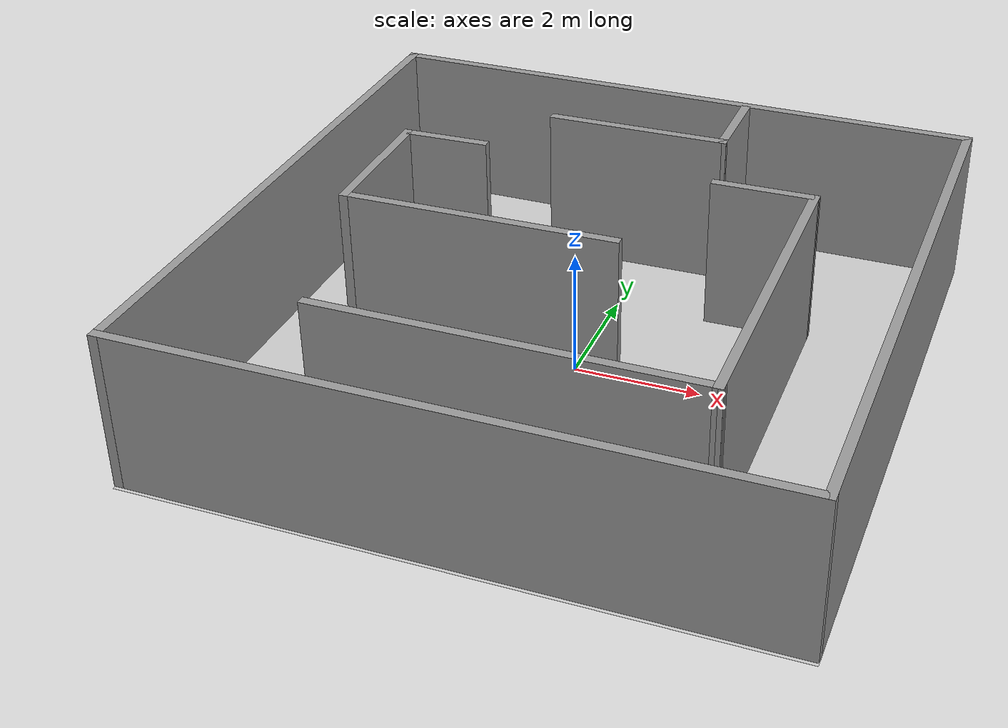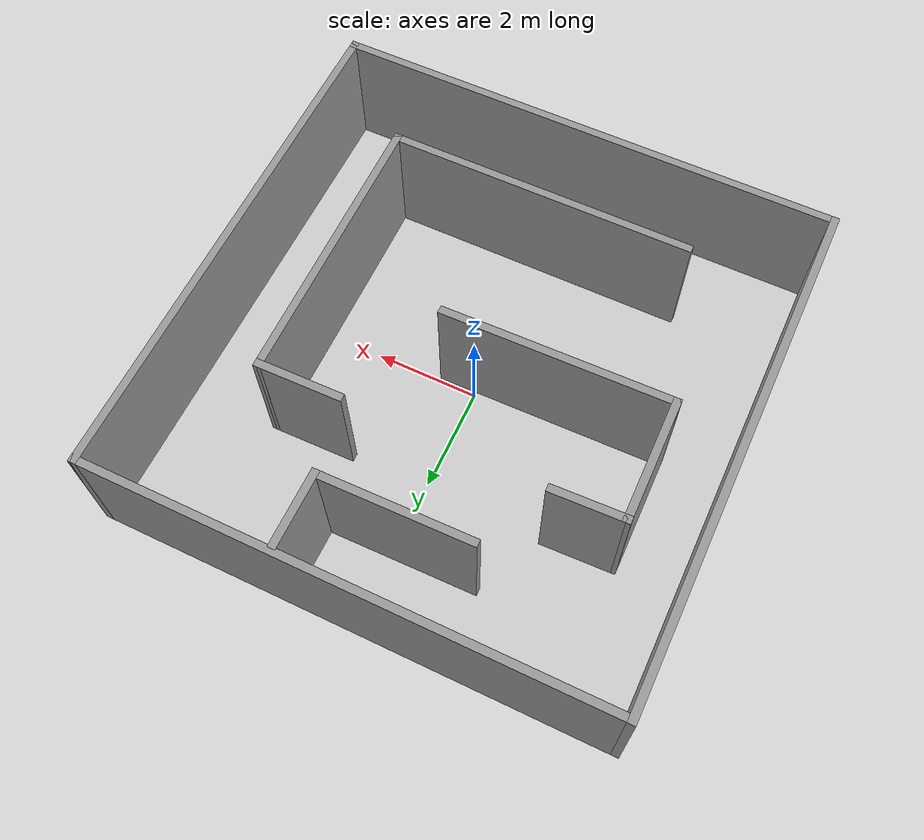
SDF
<sdf version="1.7">
 <world name="default">
  <light name="sun" type="directional">
   <pose>0 0 10 0 -0 0</pose>
   <diffuse>0.8 0.8 0.8 1</diffuse>
   <specular>0.2 0.2 0.2 1</specular>
   <attenuation>
    <range>1000</range>
    <constant>0.9</constant>
    <linear>0.01</linear>
    <quadratic>0.001</quadratic>
   </attenuation>
   <direction>-0.5 0.1 -0.9</direction>
   <spot><inner_angle>0</inner_angle><outer_angle>0</outer_angle><falloff>0</falloff></spot>
  </light>
  <gravity>0 0 -9.8</gravity>
  <magnetic_field>6e-06 2.3e-05 -4.2e-05</magnetic_field>
  <atmosphere type="adiabatic"/>
  <physics type="ode">
   <max_step_size>0.001</max_step_size>
   <real_time_factor>1</real_time_factor>
   <real_time_update_rate>1000</real_time_update_rate>
  </physics>
  <scene><ambient>0.4 0.4 0.4 1</ambient><background>0.7 0.7 0.7 1</background><shadows>1</shadows></scene>
  <spherical_coordinates>
   <surface_model>EARTH_WGS84</surface_model>
   <latitude_deg>0</latitude_deg>
   <longitude_deg>0</longitude_deg>
   <elevation>0</elevation>
   <heading_deg>0</heading_deg>
  </spherical_coordinates>
  <model name="Untitled1">
   <pose>-0.004254 0.039993 0 0 -0 0</pose>
   <link name="Wall_26">
    <collision name="Wall_26_Collision">
     <geometry><box><size>10 0.15 2.5</size></box></geometry>
     <pose>0 0 1.25 0 -0 0</pose>
    </collision>
    <visual name="Wall_26_Visual">
     <pose>0 0 1.25 0 -0 0</pose>
     <geometry><box><size>10 0.15 2.5</size></box></geometry>
     <material>
      <script><uri>file://media/materials/scripts/gazebo.material</uri><name>Gazebo/Grey</name></script>
      <ambient>1 1 1 1</ambient>
     </material>
     <meta><layer>0</layer></meta>
    </visual>
    <pose>0 4.925 0 0 -0 0</pose>
   </link>
   <link name="Wall_27">
    <collision name="Wall_27_Collision">
     <geometry><box><size>10 0.15 2.5</size></box></geometry>
     <pose>0 0 1.25 0 -0 0</pose>
    </collision>
    <visual name="Wall_27_Visual">
     <pose>0 0 1.25 0 -0 0</pose>
     <geometry><box><size>10 0.15 2.5</size></box></geometry>
     <material>
      <script><uri>file://media/materials/scripts/gazebo.material</uri><name>Gazebo/Grey</name></script>
      <ambient>1 1 1 1</ambient>
     </material>
     <meta><layer>0</layer></meta>
    </visual>
    <pose>4.925 -0 0 0 -0 -1.5708</pose>
   </link>
   <link name="Wall_28">
    <collision name="Wall_28_Collision">
     <geometry><box><size>10 0.15 2.5</size></box></geometry>
     <pose>0 0 1.25 0 -0 0</pose>
    </collision>
    <visual name="Wall_28_Visual">
     <pose>0 0 1.25 0 -0 0</pose>
     <geometry><box><size>10 0.15 2.5</size></box></geometry>
     <material>
      <script><uri>file://media/materials/scripts/gazebo.material</uri><name>Gazebo/Grey</name></script>
      <ambient>1 1 1 1</ambient>
     </material>
     <meta><layer>0</layer></meta>
    </visual>
    <pose>0 -4.925 0 0 -0 3.14159</pose>
   </link>
   <link name="Wall_29">
    <collision name="Wall_29_Collision">
     <geometry><box><size>10 0.15 2.5</size></box></geometry>
     <pose>0 0 1.25 0 -0 0</pose>
    </collision>
    <visual name="Wall_29_Visual">
     <pose>0 0 1.25 0 -0 0</pose>
     <geometry><box><size>10 0.15 2.5</size></box></geometry>
     <material>
      <script><uri>file://media/materials/scripts/gazebo.material</uri><name>Gazebo/Grey</name></script>
      <ambient>1 1 1 1</ambient>
     </material>
     <meta><layer>0</layer></meta>
    </visual>
    <pose>-4.925 -0 0 0 -0 1.5708</pose>
   </link>
   <link name="Wall_34">
    <collision name="Wall_34_Collision">
     <geometry><box><size>3.01234 0.15 2.5</size></box></geometry>
     <pose>0 0 1.25 0 -0 0</pose>
    </collision>
    <visual name="Wall_34_Visual">
     <pose>0 0 1.25 0 -0 0</pose>
     <geometry><box><size>3.01234 0.15 2.5</size></box></geometry>
     <material>
      <script><uri>file://media/materials/scripts/gazebo.material</uri><name>Gazebo/Grey</name></script>
      <ambient>1 1 1 1</ambient>
     </material>
     <meta><layer>0</layer></meta>
    </visual>
    <pose>-0.189004 3.4421 0 0 -0 0.015105</pose>
   </link>
   <link name="Wall_35">
    <collision name="Wall_35_Collision">
     <geometry><box><size>1.5 0.15 2.5</size></box></geometry>
     <pose>0 0 1.25 0 -0 0</pose>
    </collision>
    <visual name="Wall_35_Visual">
     <pose>0 0 1.25 0 -0 0</pose>
     <geometry><box><size>1.5 0.15 2.5</size></box></geometry>
     <material>
      <script><uri>file://media/materials/scripts/gazebo.material</uri><name>Gazebo/Grey</name></script>
      <ambient>1 1 1 1</ambient>
     </material>
     <meta><layer>0</layer></meta>
    </visual>
    <pose>1.242 4.13872 0 0 -0 1.5708</pose>
   </link>
   <link name="Wall_37">
    <collision name="Wall_37_Collision">
     <geometry><box><size>1.46608 0.15 2.5</size></box></geometry>
     <pose>0 0 1.25 0 -0 0</pose>
    </collision>
    <visual name="Wall_37_Visual">
     <pose>0 0 1.25 0 -0 0</pose>
     <geometry><box><size>1.46608 0.15 2.5</size></box></geometry>
     <material>
      <script><uri>file://media/materials/scripts/gazebo.material</uri><name>Gazebo/Grey</name></script>
      <ambient>1 1 1 1</ambient>
     </material>
     <meta><layer>0</layer></meta>
    </visual>
    <pose>-3.01794 2.04823 0 0 -0 -3.10661</pose>
   </link>
   <link name="Wall_38">
    <collision name="Wall_38_Collision">
     <geometry><box><size>2.43892 0.15 2.5</size></box></geometry>
     <pose>0 0 1.25 0 -0 0</pose>
    </collision>
    <visual name="Wall_38_Visual">
     <pose>0 0 1.25 0 -0 0</pose>
     <geometry><box><size>2.43892 0.15 2.5</size></box></geometry>
     <material>
      <script><uri>file://media/materials/scripts/gazebo.material</uri><name>Gazebo/Grey</name></script>
      <ambient>1 1 1 1</ambient>
     </material>
     <meta><layer>0</layer></meta>
    </visual>
    <pose>-3.65902 0.881139 0 0 -0 -1.55643</pose>
   </link>
   <link name="Wall_39">
    <collision name="Wall_39_Collision">
     <geometry><box><size>4.47706 0.15 2.5</size></box></geometry>
     <pose>0 0 1.25 0 -0 0</pose>
    </collision>
    <visual name="Wall_39_Visual">
     <pose>0 0 1.25 0 -0 0</pose>
     <geometry><box><size>4.47706 0.15 2.5</size></box></geometry>
     <material>
      <script><uri>file://media/materials/scripts/gazebo.material</uri><name>Gazebo/Grey</name></script>
      <ambient>1 1 1 1</ambient>
     </material>
     <meta><layer>0</layer></meta>
    </visual>
    <pose>-1.47935 -0.226776 0 0 -0 0.016716</pose>
   </link>
   <link name="Wall_41">
    <collision name="Wall_41_Collision">
     <geometry><box><size>1.68881 0.15 2.5</size></box></geometry>
     <pose>0 0 1.25 0 -0 0</pose>
    </collision>
    <visual name="Wall_41_Visual">
     <pose>0 0 1.25 0 -0 0</pose>
     <geometry><box><size>1.68881 0.15 2.5</size></box></geometry>
     <material>
      <script><uri>file://media/materials/scripts/gazebo.material</uri><name>Gazebo/Grey</name></script>
      <ambient>1 1 1 1</ambient>
     </material>
     <meta><layer>0</layer></meta>
    </visual>
    <pose>2.30794 2.07782 0 0 -0 0.017092</pose>
   </link>
   <link name="Wall_43">
    <collision name="Wall_43_Collision">
     <geometry><box><size>5.47785 0.15 2.5</size></box></geometry>
     <pose>0 0 1.25 0 -0 0</pose>
    </collision>
    <visual name="Wall_43_Visual">
     <pose>0 0 1.25 0 -0 0</pose>
     <geometry><box><size>5.47785 0.15 2.5</size></box></geometry>
     <material>
      <script><uri>file://media/materials/scripts/gazebo.material</uri><name>Gazebo/Grey</name></script>
      <ambient>1 1 1 1</ambient>
     </material>
     <meta><layer>0</layer></meta>
    </visual>
    <pose>3.10043 -0.572853 0 0 -0 -1.56209</pose>
   </link>
   <link name="Wall_44">
    <collision name="Wall_44_Collision">
     <geometry><box><size>6 0.15 2.5</size></box></geometry>
     <pose>0 0 1.25 0 -0 0</pose>
    </collision>
    <visual name="Wall_44_Visual">
     <pose>0 0 1.25 0 -0 0</pose>
     <geometry><box><size>6 0.15 2.5</size></box></geometry>
     <material>
      <script><uri>file://media/materials/scripts/gazebo.material</uri><name>Gazebo/Grey</name></script>
      <ambient>1 1 1 1</ambient>
     </material>
     <meta><layer>0</layer></meta>
    </visual>
    <pose>0.198628 -3.23667 0 0 -0 3.14159</pose>
   </link>
   <static>1</static>
  </model>
  <model name="map_1">
   <static>1</static>
   <link name="link">
    <collision name="collision">
     <geometry><plane><normal>0 0 1</normal><size>10 10</size></plane></geometry>
     <surface><friction><ode><mu>100</mu><mu2>50</mu2></ode></friction></surface>
    </collision>
    <visual name="visual">
     <cast_shadows>0</cast_shadows>
     <geometry><plane><normal>0 0 1</normal><size>10 10</size></plane></geometry>
     <material>
      <script>
       <uri>model://map_1/materials/scripts</uri>
       <uri>model://map_1/materials/textures/</uri>
       <name>Map1/Image</name>
      </script>
     </material>
    </visual>
   </link>
  </model>
 </world>
</sdf>
